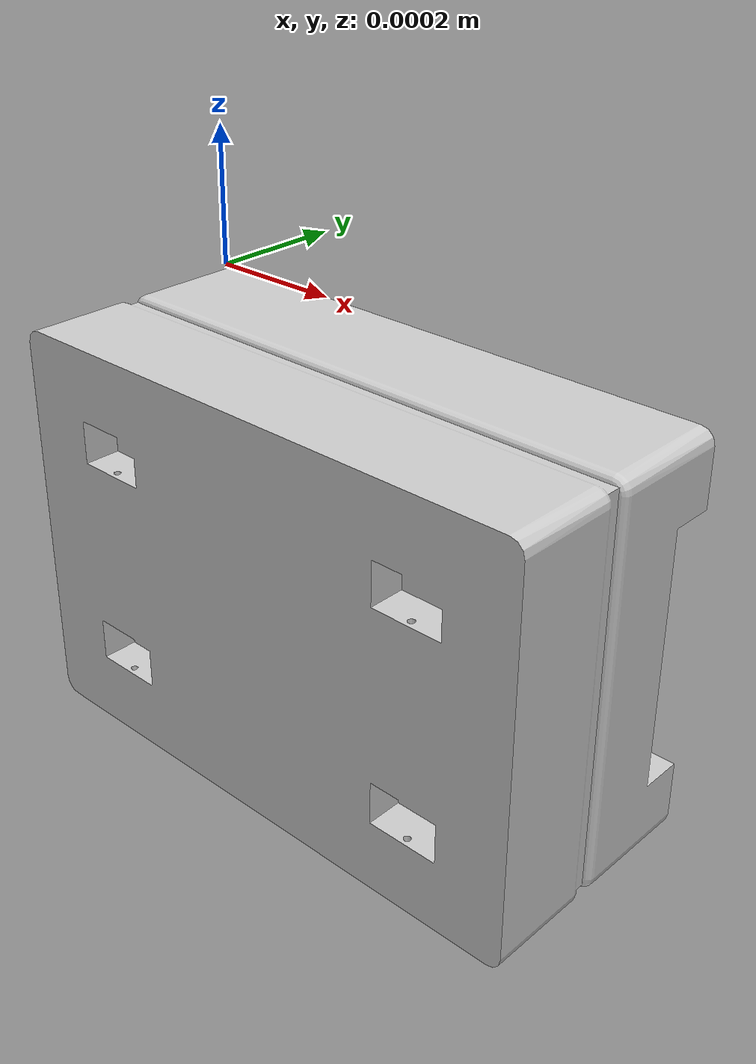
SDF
<sdf version='1.7'>
  <model name='body'>
    <link name='body'>
      <inertial>
        <pose>0.40028 -0.17084 -0.28 0 -0 0</pose>
        <mass>148.06</mass>
        <inertia>
          <ixx>5.2811</ixx>
          <ixy>-0.0081074</ixy>
          <ixz>-1.7558e-10</ixz>
          <iyy>11.5</iyy>
          <iyz>-2.47496e-16</iyz>
          <izz>9.019</izz>
        </inertia>
      </inertial>
      <collision name='body_collision'>
        <pose>0 0 0 1.5708 -0 0</pose>
        <geometry>
          <mesh>
            <scale>1 1 1</scale>
            <uri>model://body/meshes/body.dae</uri>
          </mesh>
        </geometry>
      </collision>
      <visual name='body_visual'>
        <pose>0 0 0 1.5708 -0 0</pose>
        <geometry>
          <mesh>
            <scale>1 1 1</scale>
            <uri>model://body/meshes/body.dae</uri>
          </mesh>
        </geometry>
      </visual>
    </link>
  </model>
</sdf>
